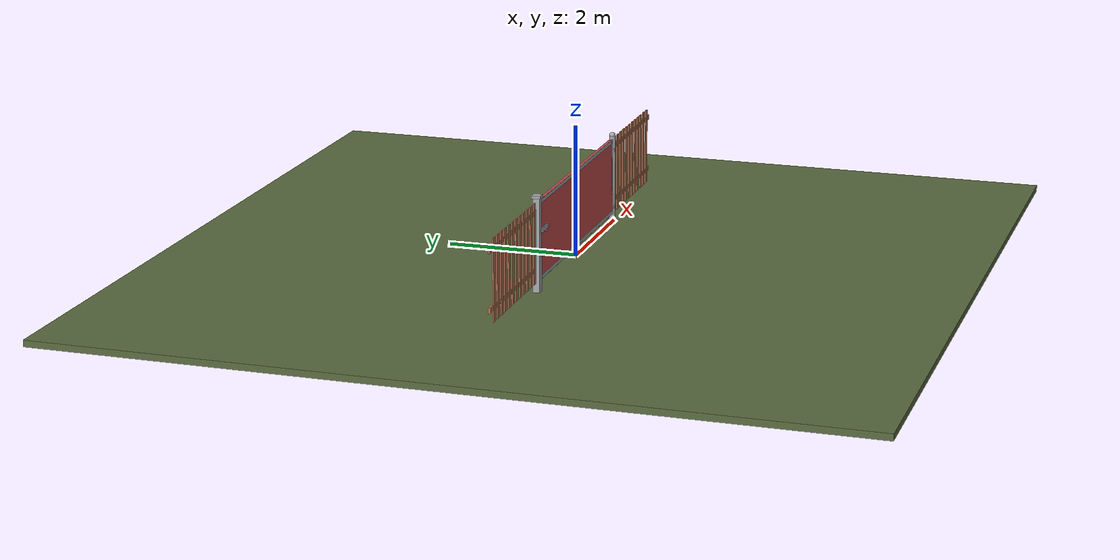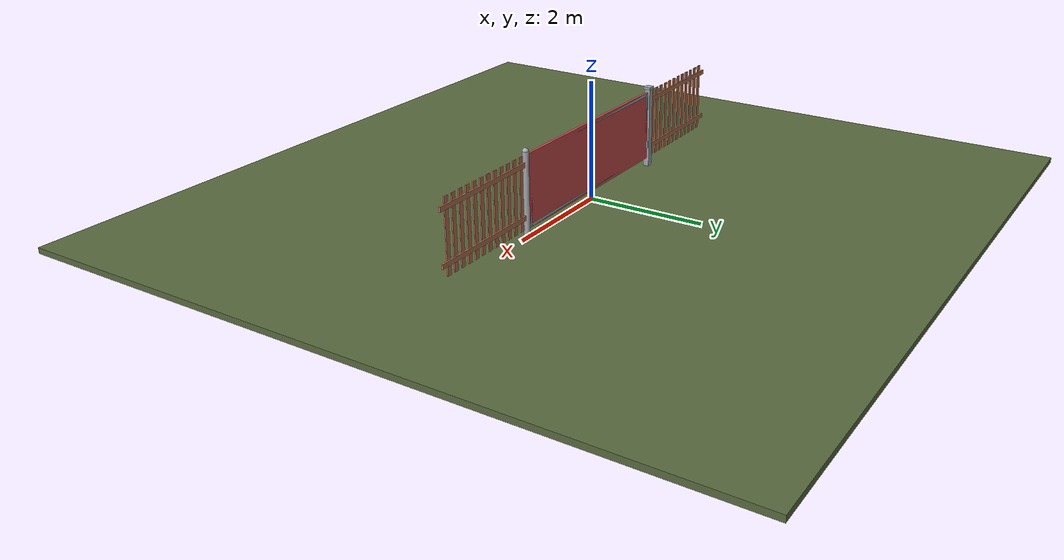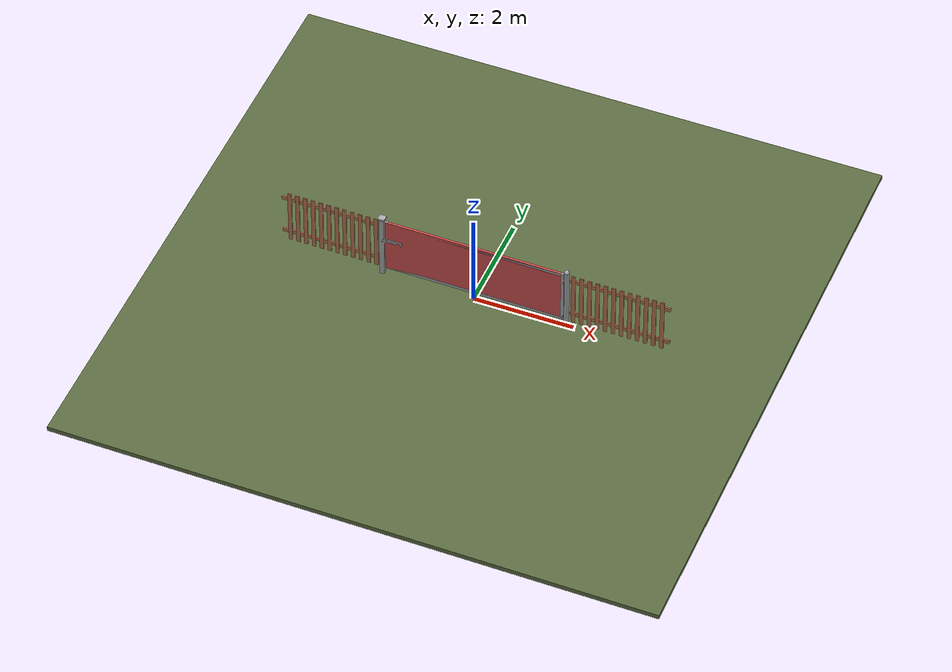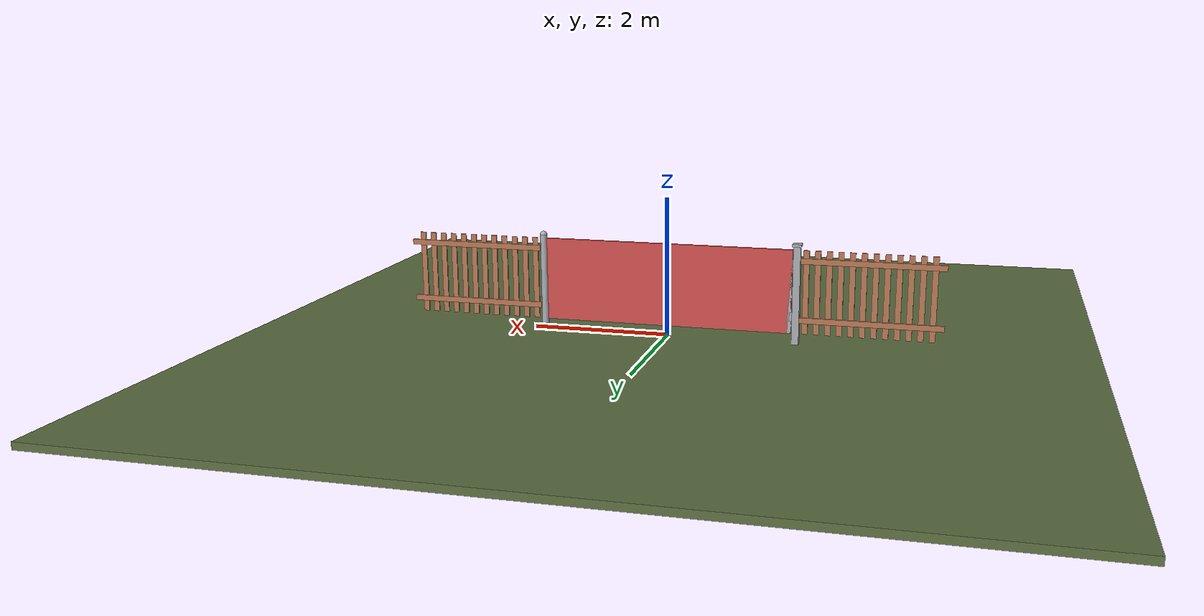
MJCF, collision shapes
<?xml version="1.0" ?>
<mujoco model="db0455_gate_swing_full">
  <compiler angle="radian" meshdir="../../hardware" texturedir="../../textures" autolimits="true" inertiafromgeom="false"/>
  <option timestep="0.002" integrator="implicitfast" cone="elliptic" impratio="10" noslip_iterations="3">
    <flag multiccd="enable"/>
  </option>
  <size memory="16M"/>
  <default>
    <geom condim="4" solref="0.005 1" solimp="0.95 0.99 0.001"/>
    <joint solreflimit="0.005 1" solimplimit="0.95 0.99 0.001"/>
    <tendon solreflimit="0.005 1"/>
    <equality solref="0.002 1"/>
  </default>
  <visual>
    <headlight ambient="0.4 0.4 0.4" diffuse="0.7 0.7 0.7" specular="0.2 0.2 0.2"/>
    <quality shadowsize="4096"/>
    <map znear="0.01" zfar="60"/>
  </visual>
  <asset>
    <mesh name="strap_hinge_78d1bbb966" file="strap_hinge_78d1bbb966.obj"/>
    <material name="mat_floor" rgba="0.35 0.42 0.25 1" specular="0.2" shininess="0.15" reflectance="0"/>
    <material name="mat_wall" rgba="0.78 0.76 0.7 1" specular="0.2" shininess="0.1" reflectance="0"/>
    <material name="mat_leaf" rgba="0.65 0.66 0.68 1" specular="0.74" shininess="0.5" reflectance="0.36"/>
    <material name="mat_hinge" rgba="0.65 0.66 0.68 1" specular="0.74" shininess="0.5" reflectance="0.36"/>
    <material name="mat_op_steel_galvanized" rgba="0.65 0.66 0.68 1" specular="0.74" shininess="0.5" reflectance="0.36"/>
    <material name="mat_frame" rgba="0.65 0.66 0.68 1" specular="0.74" shininess="0.5" reflectance="0.36"/>
    <material name="mat_fence" rgba="0.7 0.45 0.32 1" specular="0.2" shininess="0.4" reflectance="0"/>
    <texture name="skybox" type="skybox" builtin="gradient" rgb1="0.6 0.7 0.85" rgb2="0.9 0.92 0.95" width="256" height="256"/>
  </asset>
  <worldbody>
    <light name="sun" pos="1.5 -2.5 4" dir="-0.3 0.5 -0.8" directional="true" diffuse="0.8 0.8 0.8" specular="0.3 0.3 0.3" castshadow="true"/>
    <light name="fill" pos="-1.5 2.5 3" dir="0.3 -0.5 -0.7" directional="true" diffuse="0.35 0.35 0.4" castshadow="false"/>
    <camera name="robot_view" pos="0 -4.01125 1.73315" xyaxes="1 0 0 0 0.26963 0.962964" fovy="52"/>
    <camera name="far_view" pos="0 4.01125 1.73315" xyaxes="-1 0 0 0 -0.26963 0.962964" fovy="52"/>
    <camera name="iso" pos="-3.04855 -3.36945 2.37495" xyaxes="0.741536 -0.670913 0 0.242917 0.268487 0.932151" fovy="46"/>
    <camera name="detail_handle" pos="-1.579 -0.92 1.18" xyaxes="0.97561 0.219512 0 -0.070934 0.315262 0.94635" fovy="38"/>
    <geom name="floor" type="box" size="6 6 0.05" pos="0 0 -0.05" material="mat_floor" group="0" contype="1" conaffinity="1" friction="0.8 0.005 0.0001" density="2400"/>
    <geom name="hinge_pintle_0" type="cylinder" size="0.008 0.02" pos="1.803 -0.05 0.274" material="mat_hinge" group="1" contype="0" conaffinity="0" density="7850"/>
    <geom name="hinge_pintle_1" type="cylinder" size="0.008 0.02" pos="1.803 -0.05 1.174" material="mat_hinge" group="1" contype="0" conaffinity="0" density="7850"/>
    <geom name="leaf_slide_bolt_keeper_leg_n" type="box" size="0.007 0.0025 0.017" pos="-1.826 -0.067 0.9155" quat="0 0 -0.707107 0.707107" material="mat_op_steel_galvanized" group="0" contype="1" conaffinity="1" friction="0.6 0.005 0.0001" density="7800"/>
    <geom name="leaf_slide_bolt_keeper_leg_p" type="box" size="0.007 0.0025 0.017" pos="-1.826 -0.067 0.8845" quat="0 0 -0.707107 0.707107" material="mat_op_steel_galvanized" group="0" contype="1" conaffinity="1" friction="0.6 0.005 0.0001" density="7800"/>
    <geom name="leaf_slide_bolt_keeper_bridge" type="box" size="0.007 0.018 0.0025" pos="-1.826 -0.0815 0.9" quat="0 0 -0.707107 0.707107" material="mat_op_steel_galvanized" group="0" contype="1" conaffinity="1" friction="0.6 0.005 0.0001" density="7800"/>
    <geom name="leaf_slide_bolt_keeper_base" type="box" size="0.015 0.024 0.001" pos="-1.826 -0.051 0.9" quat="0 0 -0.707107 0.707107" material="mat_op_steel_galvanized" group="1" contype="0" conaffinity="0" density="7800"/>
    <geom name="post_hinge" type="cylinder" size="0.05 0.7" pos="1.856 0 0.7" material="mat_frame" group="0" contype="1" conaffinity="1" friction="0.6 0.005 0.0001" density="800"/>
    <geom name="post_hinge_cap" type="sphere" size="0.05" pos="1.856 0 1.4" material="mat_frame" group="1" contype="0" conaffinity="0" density="800"/>
    <geom name="post_latch" type="box" size="0.05 0.05 0.7" pos="-1.856 0 0.7" material="mat_frame" group="0" contype="1" conaffinity="1" friction="0.6 0.005 0.0001" density="800"/>
    <geom name="post_latch_cap" type="box" size="0.065 0.065 0.02" pos="-1.856 0 1.42" material="mat_frame" group="1" contype="0" conaffinity="0" density="800"/>
    <geom name="gate_stop" type="box" size="0.02 0.012 0.06" pos="-1.786 0.0345 0.4" material="mat_frame" group="0" contype="1" conaffinity="1" friction="0.6 0.005 0.0001" density="800"/>
    <geom name="fence_picket_l_0" type="box" size="0.04 0.01 0.6" pos="-1.986 0 0.75" material="mat_fence" group="0" contype="1" conaffinity="1" friction="0.6 0.005 0.0001" density="400"/>
    <geom name="fence_picket_l_1" type="box" size="0.04 0.01 0.6" pos="-2.146 0 0.75" material="mat_fence" group="0" contype="1" conaffinity="1" friction="0.6 0.005 0.0001" density="400"/>
    <geom name="fence_picket_l_2" type="box" size="0.04 0.01 0.6" pos="-2.306 0 0.75" material="mat_fence" group="0" contype="1" conaffinity="1" friction="0.6 0.005 0.0001" density="400"/>
    <geom name="fence_picket_l_3" type="box" size="0.04 0.01 0.6" pos="-2.466 0 0.75" material="mat_fence" group="0" contype="1" conaffinity="1" friction="0.6 0.005 0.0001" density="400"/>
    <geom name="fence_picket_l_4" type="box" size="0.04 0.01 0.6" pos="-2.626 0 0.75" material="mat_fence" group="0" contype="1" conaffinity="1" friction="0.6 0.005 0.0001" density="400"/>
    <geom name="fence_picket_l_5" type="box" size="0.04 0.01 0.6" pos="-2.786 0 0.75" material="mat_fence" group="0" contype="1" conaffinity="1" friction="0.6 0.005 0.0001" density="400"/>
    <geom name="fence_picket_l_6" type="box" size="0.04 0.01 0.6" pos="-2.946 0 0.75" material="mat_fence" group="0" contype="1" conaffinity="1" friction="0.6 0.005 0.0001" density="400"/>
    <geom name="fence_picket_l_7" type="box" size="0.04 0.01 0.6" pos="-3.106 0 0.75" material="mat_fence" group="0" contype="1" conaffinity="1" friction="0.6 0.005 0.0001" density="400"/>
    <geom name="fence_picket_l_8" type="box" size="0.04 0.01 0.6" pos="-3.266 0 0.75" material="mat_fence" group="0" contype="1" conaffinity="1" friction="0.6 0.005 0.0001" density="400"/>
    <geom name="fence_picket_l_9" type="box" size="0.04 0.01 0.6" pos="-3.426 0 0.75" material="mat_fence" group="0" contype="1" conaffinity="1" friction="0.6 0.005 0.0001" density="400"/>
    <geom name="fence_picket_l_10" type="box" size="0.04 0.01 0.6" pos="-3.586 0 0.75" material="mat_fence" group="0" contype="1" conaffinity="1" friction="0.6 0.005 0.0001" density="400"/>
    <geom name="fence_picket_l_11" type="box" size="0.04 0.01 0.6" pos="-3.746 0 0.75" material="mat_fence" group="0" contype="1" conaffinity="1" friction="0.6 0.005 0.0001" density="400"/>
    <geom name="fence_rail_l" type="box" size="1 0.015 0.04" pos="-2.906 0.015 1.2" material="mat_fence" group="0" contype="1" conaffinity="1" friction="0.6 0.005 0.0001" density="400"/>
    <geom name="fence_rail_b_l" type="box" size="1 0.015 0.04" pos="-2.906 0.015 0.35" material="mat_fence" group="0" contype="1" conaffinity="1" friction="0.6 0.005 0.0001" density="400"/>
    <geom name="fence_picket_r_0" type="box" size="0.04 0.01 0.6" pos="1.986 0 0.75" material="mat_fence" group="0" contype="1" conaffinity="1" friction="0.6 0.005 0.0001" density="400"/>
    <geom name="fence_picket_r_1" type="box" size="0.04 0.01 0.6" pos="2.146 0 0.75" material="mat_fence" group="0" contype="1" conaffinity="1" friction="0.6 0.005 0.0001" density="400"/>
    <geom name="fence_picket_r_2" type="box" size="0.04 0.01 0.6" pos="2.306 0 0.75" material="mat_fence" group="0" contype="1" conaffinity="1" friction="0.6 0.005 0.0001" density="400"/>
    <geom name="fence_picket_r_3" type="box" size="0.04 0.01 0.6" pos="2.466 0 0.75" material="mat_fence" group="0" contype="1" conaffinity="1" friction="0.6 0.005 0.0001" density="400"/>
    <geom name="fence_picket_r_4" type="box" size="0.04 0.01 0.6" pos="2.626 0 0.75" material="mat_fence" group="0" contype="1" conaffinity="1" friction="0.6 0.005 0.0001" density="400"/>
    <geom name="fence_picket_r_5" type="box" size="0.04 0.01 0.6" pos="2.786 0 0.75" material="mat_fence" group="0" contype="1" conaffinity="1" friction="0.6 0.005 0.0001" density="400"/>
    <geom name="fence_picket_r_6" type="box" size="0.04 0.01 0.6" pos="2.946 0 0.75" material="mat_fence" group="0" contype="1" conaffinity="1" friction="0.6 0.005 0.0001" density="400"/>
    <geom name="fence_picket_r_7" type="box" size="0.04 0.01 0.6" pos="3.106 0 0.75" material="mat_fence" group="0" contype="1" conaffinity="1" friction="0.6 0.005 0.0001" density="400"/>
    <geom name="fence_picket_r_8" type="box" size="0.04 0.01 0.6" pos="3.266 0 0.75" material="mat_fence" group="0" contype="1" conaffinity="1" friction="0.6 0.005 0.0001" density="400"/>
    <geom name="fence_picket_r_9" type="box" size="0.04 0.01 0.6" pos="3.426 0 0.75" material="mat_fence" group="0" contype="1" conaffinity="1" friction="0.6 0.005 0.0001" density="400"/>
    <geom name="fence_picket_r_10" type="box" size="0.04 0.01 0.6" pos="3.586 0 0.75" material="mat_fence" group="0" contype="1" conaffinity="1" friction="0.6 0.005 0.0001" density="400"/>
    <geom name="fence_picket_r_11" type="box" size="0.04 0.01 0.6" pos="3.746 0 0.75" material="mat_fence" group="0" contype="1" conaffinity="1" friction="0.6 0.005 0.0001" density="400"/>
    <geom name="fence_rail_r" type="box" size="1 0.015 0.04" pos="2.906 0.015 1.2" material="mat_fence" group="0" contype="1" conaffinity="1" friction="0.6 0.005 0.0001" density="400"/>
    <geom name="fence_rail_b_r" type="box" size="1 0.015 0.04" pos="2.906 0.015 0.35" material="mat_fence" group="0" contype="1" conaffinity="1" friction="0.6 0.005 0.0001" density="400"/>
    <geom name="gate_stop_strap_0" type="box" size="0.0505 0.0096 0.048" pos="-1.856 0.0345 0.4" material="mat_frame" group="1" contype="0" conaffinity="0" density="7850"/>
    <site name="approach_point" pos="0 -1.5 0" quat="1 0 0 0" size="0.05" rgba="0.2 0.9 0.2 0.5" group="4"/>
    <site name="goal_point" pos="0 1.5 0" quat="1 0 0 0" size="0.05" rgba="0.2 0.9 0.2 0.5" group="4"/>
    <site name="door_plane_center" pos="0 0 0.61" quat="1 0 0 0" size="0.02" rgba="0.2 0.9 0.2 0.5" group="4"/>
    <body name="leaf" pos="1.806 0 0">
      <inertial pos="-1.75621 -0.001253 0.751065" mass="59.645875" quat="0.706987 0.707226 0.000258 -0.000966" diaginertia="7.303788546 68.539645476 75.819264449"/>
      <joint name="leaf_hinge" type="hinge" axis="0 0 1" pos="-0.003 -0.05 0" limited="true" range="0 1.570796" damping="36.450638" frictionloss="24.530182" armature="0.02"/>
      <geom name="leaf_slab_col" type="box" size="1.8 0.0225 0.6" pos="-1.803 0 0.75" material="mat_leaf" group="3" contype="1" conaffinity="1" rgba="0.8 0.3 0.3 0.25" friction="0.42 0.005 0.0001" density="1"/>
      <geom name="leaf_rail_b" type="box" size="1.8 0.0225 0.03" pos="-1.803 0 0.18" material="mat_leaf" group="1" contype="0" conaffinity="0" density="1"/>
      <geom name="leaf_rail_t" type="box" size="1.8 0.0225 0.03" pos="-1.803 0 1.32" material="mat_leaf" group="1" contype="0" conaffinity="0" density="1"/>
      <geom name="leaf_stile_h" type="box" size="0.03 0.0225 0.6" pos="-0.033 0 0.75" material="mat_leaf" group="1" contype="0" conaffinity="0" density="1"/>
      <geom name="leaf_stile_l" type="box" size="0.03 0.0225 0.6" pos="-3.573 0 0.75" material="mat_leaf" group="1" contype="0" conaffinity="0" density="1"/>
      <geom name="leaf_bar_0" type="cylinder" size="0.0095 0.54" pos="-0.127444 0 0.75" material="mat_leaf" group="1" contype="0" conaffinity="0" density="1"/>
      <geom name="leaf_bar_1" type="cylinder" size="0.0095 0.54" pos="-0.256333 0 0.75" material="mat_leaf" group="1" contype="0" conaffinity="0" density="1"/>
      <geom name="leaf_bar_2" type="cylinder" size="0.0095 0.54" pos="-0.385222 0 0.75" material="mat_leaf" group="1" contype="0" conaffinity="0" density="1"/>
      <geom name="leaf_bar_3" type="cylinder" size="0.0095 0.54" pos="-0.514111 0 0.75" material="mat_leaf" group="1" contype="0" conaffinity="0" density="1"/>
      <geom name="leaf_bar_4" type="cylinder" size="0.0095 0.54" pos="-0.643 0 0.75" material="mat_leaf" group="1" contype="0" conaffinity="0" density="1"/>
      <geom name="leaf_bar_5" type="cylinder" size="0.0095 0.54" pos="-0.771889 0 0.75" material="mat_leaf" group="1" contype="0" conaffinity="0" density="1"/>
      <geom name="leaf_bar_6" type="cylinder" size="0.0095 0.54" pos="-0.900778 0 0.75" material="mat_leaf" group="1" contype="0" conaffinity="0" density="1"/>
      <geom name="leaf_bar_7" type="cylinder" size="0.0095 0.54" pos="-1.029667 0 0.75" material="mat_leaf" group="1" contype="0" conaffinity="0" density="1"/>
      <geom name="leaf_bar_8" type="cylinder" size="0.0095 0.54" pos="-1.158556 0 0.75" material="mat_leaf" group="1" contype="0" conaffinity="0" density="1"/>
      <geom name="leaf_bar_9" type="cylinder" size="0.0095 0.54" pos="-1.287444 0 0.75" material="mat_leaf" group="1" contype="0" conaffinity="0" density="1"/>
      <geom name="leaf_bar_10" type="cylinder" size="0.0095 0.54" pos="-1.416333 0 0.75" material="mat_leaf" group="1" contype="0" conaffinity="0" density="1"/>
      <geom name="leaf_bar_11" type="cylinder" size="0.0095 0.54" pos="-1.545222 0 0.75" material="mat_leaf" group="1" contype="0" conaffinity="0" density="1"/>
      <geom name="leaf_bar_12" type="cylinder" size="0.0095 0.54" pos="-1.674111 0 0.75" material="mat_leaf" group="1" contype="0" conaffinity="0" density="1"/>
      <geom name="leaf_bar_13" type="cylinder" size="0.0095 0.54" pos="-1.803 0 0.75" material="mat_leaf" group="1" contype="0" conaffinity="0" density="1"/>
      <geom name="leaf_bar_14" type="cylinder" size="0.0095 0.54" pos="-1.931889 0 0.75" material="mat_leaf" group="1" contype="0" conaffinity="0" density="1"/>
      <geom name="leaf_bar_15" type="cylinder" size="0.0095 0.54" pos="-2.060778 0 0.75" material="mat_leaf" group="1" contype="0" conaffinity="0" density="1"/>
      <geom name="leaf_bar_16" type="cylinder" size="0.0095 0.54" pos="-2.189667 0 0.75" material="mat_leaf" group="1" contype="0" conaffinity="0" density="1"/>
      <geom name="leaf_bar_17" type="cylinder" size="0.0095 0.54" pos="-2.318556 0 0.75" material="mat_leaf" group="1" contype="0" conaffinity="0" density="1"/>
      <geom name="leaf_bar_18" type="cylinder" size="0.0095 0.54" pos="-2.447444 0 0.75" material="mat_leaf" group="1" contype="0" conaffinity="0" density="1"/>
      <geom name="leaf_bar_19" type="cylinder" size="0.0095 0.54" pos="-2.576333 0 0.75" material="mat_leaf" group="1" contype="0" conaffinity="0" density="1"/>
      <geom name="leaf_bar_20" type="cylinder" size="0.0095 0.54" pos="-2.705222 0 0.75" material="mat_leaf" group="1" contype="0" conaffinity="0" density="1"/>
      <geom name="leaf_bar_21" type="cylinder" size="0.0095 0.54" pos="-2.834111 0 0.75" material="mat_leaf" group="1" contype="0" conaffinity="0" density="1"/>
      <geom name="leaf_bar_22" type="cylinder" size="0.0095 0.54" pos="-2.963 0 0.75" material="mat_leaf" group="1" contype="0" conaffinity="0" density="1"/>
      <geom name="leaf_bar_23" type="cylinder" size="0.0095 0.54" pos="-3.091889 0 0.75" material="mat_leaf" group="1" contype="0" conaffinity="0" density="1"/>
      <geom name="leaf_bar_24" type="cylinder" size="0.0095 0.54" pos="-3.220778 0 0.75" material="mat_leaf" group="1" contype="0" conaffinity="0" density="1"/>
      <geom name="leaf_bar_25" type="cylinder" size="0.0095 0.54" pos="-3.349667 0 0.75" material="mat_leaf" group="1" contype="0" conaffinity="0" density="1"/>
      <geom name="leaf_bar_26" type="cylinder" size="0.0095 0.54" pos="-3.478556 0 0.75" material="mat_leaf" group="1" contype="0" conaffinity="0" density="1"/>
      <geom name="leaf_crossbar_33" type="box" size="1.74 0.018 0.02" pos="-1.803 0 0.546" material="mat_leaf" group="1" contype="0" conaffinity="0" density="1"/>
      <geom name="leaf_crossbar_66" type="box" size="1.74 0.018 0.02" pos="-1.803 0 0.942" material="mat_leaf" group="1" contype="0" conaffinity="0" density="1"/>
      <geom name="hinge_strap_0" type="mesh" mesh="strap_hinge_78d1bbb966" pos="-0.003 -0.0255 0.3" quat="0 0 0 1" material="mat_hinge" group="1" contype="0" conaffinity="0" density="7850"/>
      <geom name="hinge_strap_eye_0" type="cylinder" size="0.011 0.012" pos="-0.003 -0.05 0.3" material="mat_hinge" group="1" contype="0" conaffinity="0" density="7850"/>
      <geom name="hinge_strap_neck_0" type="box" size="0.012 0.01625 0.006" pos="-0.003 -0.03775 0.3" material="mat_hinge" group="1" contype="0" conaffinity="0" density="7850"/>
      <geom name="hinge_strap_1" type="mesh" mesh="strap_hinge_78d1bbb966" pos="-0.003 -0.0255 1.2" quat="0 0 0 1" material="mat_hinge" group="1" contype="0" conaffinity="0" density="7850"/>
      <geom name="hinge_strap_eye_1" type="cylinder" size="0.011 0.012" pos="-0.003 -0.05 1.2" material="mat_hinge" group="1" contype="0" conaffinity="0" density="7850"/>
      <geom name="hinge_strap_neck_1" type="box" size="0.012 0.01625 0.006" pos="-0.003 -0.03775 1.2" material="mat_hinge" group="1" contype="0" conaffinity="0" density="7850"/>
      <geom name="leaf_slide_bolt_plate" type="box" size="0.1715 0.023 0.001" pos="-3.4235 -0.0235 0.9" quat="0 0 -0.707107 0.707107" material="mat_op_steel_galvanized" group="1" contype="0" conaffinity="0" density="7800"/>
      <geom name="leaf_slide_bolt_guide_0_leg_n" type="box" size="0.006 0.002 0.03025" pos="-3.587 -0.05275 0.915" quat="0 0 -0.707107 0.707107" material="mat_op_steel_galvanized" group="1" contype="0" conaffinity="0" density="7800"/>
      <geom name="leaf_slide_bolt_guide_0_leg_p" type="box" size="0.006 0.002 0.03025" pos="-3.587 -0.05275 0.885" quat="0 0 -0.707107 0.707107" material="mat_op_steel_galvanized" group="1" contype="0" conaffinity="0" density="7800"/>
      <geom name="leaf_slide_bolt_guide_0_bridge" type="box" size="0.006 0.017 0.002" pos="-3.587 -0.081 0.9" quat="0 0 -0.707107 0.707107" material="mat_op_steel_galvanized" group="1" contype="0" conaffinity="0" density="7800"/>
      <geom name="leaf_slide_bolt_guide_1_leg_n" type="box" size="0.006 0.002 0.03025" pos="-3.262 -0.05275 0.915" quat="0 0 -0.707107 0.707107" material="mat_op_steel_galvanized" group="1" contype="0" conaffinity="0" density="7800"/>
      <geom name="leaf_slide_bolt_guide_1_leg_p" type="box" size="0.006 0.002 0.03025" pos="-3.262 -0.05275 0.885" quat="0 0 -0.707107 0.707107" material="mat_op_steel_galvanized" group="1" contype="0" conaffinity="0" density="7800"/>
      <geom name="leaf_slide_bolt_guide_1_bridge" type="box" size="0.006 0.017 0.002" pos="-3.262 -0.081 0.9" quat="0 0 -0.707107 0.707107" material="mat_op_steel_galvanized" group="1" contype="0" conaffinity="0" density="7800"/>
      <geom name="leaf_slide_bolt_guide_2_leg_n" type="box" size="0.006 0.002 0.03025" pos="-3.4245 -0.05275 0.915" quat="0 0 -0.707107 0.707107" material="mat_op_steel_galvanized" group="1" contype="0" conaffinity="0" density="7800"/>
      <geom name="leaf_slide_bolt_guide_2_leg_p" type="box" size="0.006 0.002 0.03025" pos="-3.4245 -0.05275 0.885" quat="0 0 -0.707107 0.707107" material="mat_op_steel_galvanized" group="1" contype="0" conaffinity="0" density="7800"/>
      <geom name="leaf_slide_bolt_guide_2_bridge" type="box" size="0.006 0.017 0.002" pos="-3.4245 -0.081 0.9" quat="0 0 -0.707107 0.707107" material="mat_op_steel_galvanized" group="1" contype="0" conaffinity="0" density="7800"/>
      <site name="leaf_edge_mid" pos="-3.603 0 0.6" quat="1 0 0 0" size="0.02" rgba="0.2 0.9 0.2 0.5" group="4"/>
      <body name="leaf_slide_bolt" pos="-3.603 -0.066 0.9">
        <inertial pos="0.099487 -0.004589 0" mass="0.835325" quat="0.999773 0 0 0.021294" diaginertia="0.000170793 0.005711729 0.0058426"/>
        <joint name="leaf_slide_bolt_slide" type="slide" axis="1 0 0" limited="true" range="0 0.08" damping="1" frictionloss="3" armature="0.1"/>
        <geom name="leaf_slide_bolt_rod" type="capsule" size="0.01 0.14" pos="0.109 0 0" quat="0.707107 0 -0.707107 0" material="mat_op_steel_galvanized" group="0" contype="1" conaffinity="1" friction="0.6 0.005 0.0001" density="7850"/>
        <geom name="leaf_slide_bolt_knob" type="capsule" size="0.008 0.017" pos="0.038 -0.025 0" quat="0.707107 0.707107 0 0" material="mat_op_steel_galvanized" group="0" contype="1" conaffinity="1" friction="0.6 0.005 0.0001" density="7850"/>
        <geom name="leaf_slide_bolt_knob_end" type="sphere" size="0.0108" pos="0.038 -0.05 0" material="mat_op_steel_galvanized" group="1" contype="0" conaffinity="0" density="7850"/>
        <site name="leaf_grip_n" pos="0.038 -0.054 0" quat="1 0 0 0" size="0.012" rgba="0.2 0.9 0.2 0.5" group="4"/>
      </body>
    </body>
  </worldbody>
  <sensor>
    <jointpos name="leaf_hinge_pos" joint="leaf_hinge"/>
    <jointvel name="leaf_hinge_vel" joint="leaf_hinge"/>
    <jointpos name="leaf_slide_bolt_slide_pos" joint="leaf_slide_bolt_slide"/>
    <jointvel name="leaf_slide_bolt_slide_vel" joint="leaf_slide_bolt_slide"/>
  </sensor>
</mujoco>
